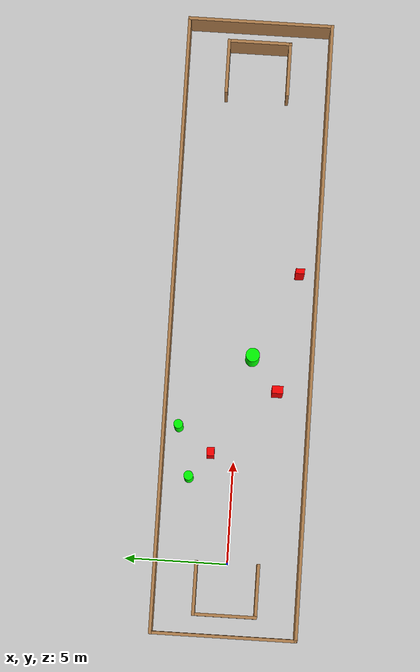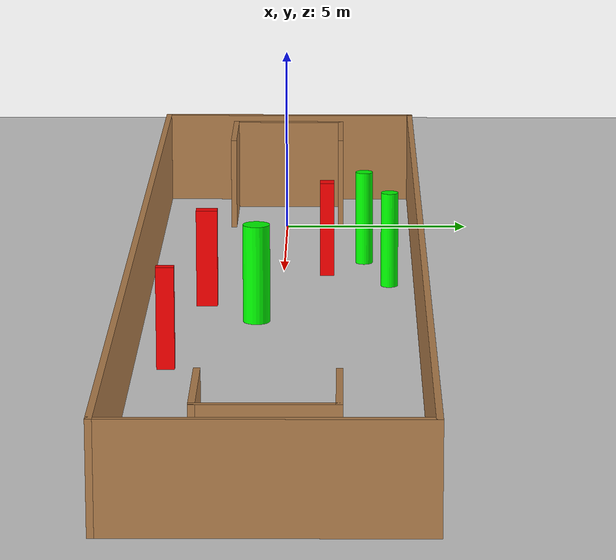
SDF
<sdf version="1.7">
 <world name="default">
  <light name="sun" type="directional">
   <pose>0 0 10 0 -0 0</pose>
   <diffuse>0.8 0.8 0.8 1</diffuse>
   <specular>0.2 0.2 0.2 1</specular>
   <attenuation>
    <range>1000</range>
    <constant>0.9</constant>
    <linear>0.01</linear>
    <quadratic>0.001</quadratic>
   </attenuation>
   <direction>-0.5 0.1 -0.9</direction>
   <spot><inner_angle>0</inner_angle><outer_angle>0</outer_angle><falloff>0</falloff></spot>
  </light>
  <model name="ground_plane">
   <static>1</static>
   <link name="link">
    <collision name="collision">
     <geometry><plane><normal>0 0 1</normal><size>100 100</size></plane></geometry>
     <surface>
      <contact><collide_bitmask>65535</collide_bitmask></contact>
      <friction><ode><mu>100</mu><mu2>50</mu2></ode></friction>
     </surface>
    </collision>
    <visual name="visual">
     <cast_shadows>0</cast_shadows>
     <geometry><plane><normal>0 0 1</normal><size>100 100</size></plane></geometry>
     <material>
      <script><uri>file://media/materials/scripts/gazebo.material</uri><name>Gazebo/Grey</name></script>
     </material>
    </visual>
   </link>
  </model>
  <gravity>0 0 -9.8</gravity>
  <magnetic_field>6e-06 2.3e-05 -4.2e-05</magnetic_field>
  <atmosphere type="adiabatic"/>
  <physics type="ode">
   <max_step_size>0.001</max_step_size>
   <real_time_factor>1</real_time_factor>
   <real_time_update_rate>1000</real_time_update_rate>
  </physics>
  <scene><ambient>0.4 0.4 0.4 1</ambient><background>0.7 0.7 0.7 1</background><shadows>1</shadows></scene>
  <spherical_coordinates>
   <surface_model>EARTH_WGS84</surface_model>
   <latitude_deg>0</latitude_deg>
   <longitude_deg>0</longitude_deg>
   <elevation>0</elevation>
   <heading_deg>0</heading_deg>
  </spherical_coordinates>
  <model name="my_base_walls">
   <link name="Wall_0">
    <collision name="Wall_0_Collision">
     <geometry><box><size>7.15 0.15 2.5</size></box></geometry>
     <pose>0 0 1.25 0 -0 0</pose>
    </collision>
    <visual name="Wall_0_Visual">
     <pose>0 0 1.25 0 -0 0</pose>
     <geometry><box><size>7.15 0.15 2.5</size></box></geometry>
     <material>
      <script><uri>file://media/materials/scripts/gazebo.material</uri><name>Gazebo/Wood</name></script>
      <ambient>1 1 1 1</ambient>
     </material>
     <meta><layer>0</layer></meta>
    </visual>
    <pose>-15 0 0 0 -0 1.5708</pose>
   </link>
   <link name="Wall_10">
    <collision name="Wall_10_Collision">
     <geometry><box><size>2.65 0.15 2.5</size></box></geometry>
     <pose>0 0 1.25 0 -0 0</pose>
    </collision>
    <visual name="Wall_10_Visual">
     <pose>0 0 1.25 0 -0 0</pose>
     <geometry><box><size>2.65 0.15 2.5</size></box></geometry>
     <material>
      <script><uri>file://media/materials/scripts/gazebo.material</uri><name>Gazebo/Wood</name></script>
      <ambient>1 1 1 1</ambient>
     </material>
     <meta><layer>0</layer></meta>
    </visual>
    <pose>-12.75 -1.5 0 0 -0 0</pose>
   </link>
   <link name="Wall_12">
    <collision name="Wall_12_Collision">
     <geometry><box><size>2.65 0.15 2.5</size></box></geometry>
     <pose>0 0 1.25 0 -0 0</pose>
    </collision>
    <visual name="Wall_12_Visual">
     <pose>0 0 1.25 0 -0 0</pose>
     <geometry><box><size>2.65 0.15 2.5</size></box></geometry>
     <material>
      <script><uri>file://media/materials/scripts/gazebo.material</uri><name>Gazebo/Wood</name></script>
      <ambient>1 1 1 1</ambient>
     </material>
     <meta><layer>0</layer></meta>
    </visual>
    <pose>-12.75 1.5 0 0 -0 0</pose>
   </link>
   <link name="Wall_14">
    <collision name="Wall_14_Collision">
     <geometry><box><size>3.15 0.15 2.5</size></box></geometry>
     <pose>0 0 1.25 0 -0 0</pose>
    </collision>
    <visual name="Wall_14_Visual">
     <pose>0 0 1.25 0 -0 0</pose>
     <geometry><box><size>3.15 0.15 2.5</size></box></geometry>
     <material>
      <script><uri>file://media/materials/scripts/gazebo.material</uri><name>Gazebo/Wood</name></script>
      <ambient>1 1 1 1</ambient>
     </material>
     <meta><layer>0</layer></meta>
    </visual>
    <pose>14 0 0 0 -0 -1.5708</pose>
   </link>
   <link name="Wall_15">
    <collision name="Wall_15_Collision">
     <geometry><box><size>2.65 0.15 2.5</size></box></geometry>
     <pose>0 0 1.25 0 -0 0</pose>
    </collision>
    <visual name="Wall_15_Visual">
     <pose>0 0 1.25 0 -0 0</pose>
     <geometry><box><size>2.65 0.15 2.5</size></box></geometry>
     <material>
      <script><uri>file://media/materials/scripts/gazebo.material</uri><name>Gazebo/Wood</name></script>
      <ambient>1 1 1 1</ambient>
     </material>
     <meta><layer>0</layer></meta>
    </visual>
    <pose>12.75 -1.5 0 0 -0 3.14159</pose>
   </link>
   <link name="Wall_17">
    <collision name="Wall_17_Collision">
     <geometry><box><size>2.65 0.15 2.5</size></box></geometry>
     <pose>0 0 1.25 0 -0 0</pose>
    </collision>
    <visual name="Wall_17_Visual">
     <pose>0 0 1.25 0 -0 0</pose>
     <geometry><box><size>2.65 0.15 2.5</size></box></geometry>
     <material>
      <script><uri>file://media/materials/scripts/gazebo.material</uri><name>Gazebo/Wood</name></script>
      <ambient>1 1 1 1</ambient>
     </material>
     <meta><layer>0</layer></meta>
    </visual>
    <pose>12.75 1.5 0 0 -0 3.14159</pose>
   </link>
   <link name="Wall_2">
    <collision name="Wall_2_Collision">
     <geometry><box><size>30.15 0.15 2.5</size></box></geometry>
     <pose>0 0 1.25 0 -0 0</pose>
    </collision>
    <visual name="Wall_2_Visual">
     <pose>0 0 1.25 0 -0 0</pose>
     <geometry><box><size>30.15 0.15 2.5</size></box></geometry>
     <material>
      <script><uri>file://media/materials/scripts/gazebo.material</uri><name>Gazebo/Wood</name></script>
      <ambient>1 1 1 1</ambient>
     </material>
     <meta><layer>0</layer></meta>
    </visual>
    <pose>-0 -3.5 0 0 -0 0</pose>
   </link>
   <link name="Wall_4">
    <collision name="Wall_4_Collision">
     <geometry><box><size>30.15 0.15 2.5</size></box></geometry>
     <pose>0 0 1.25 0 -0 0</pose>
    </collision>
    <visual name="Wall_4_Visual">
     <pose>0 0 1.25 0 -0 0</pose>
     <geometry><box><size>30.15 0.15 2.5</size></box></geometry>
     <material>
      <script><uri>file://media/materials/scripts/gazebo.material</uri><name>Gazebo/Wood</name></script>
      <ambient>1 1 1 1</ambient>
     </material>
     <meta><layer>0</layer></meta>
    </visual>
    <pose>-0 3.5 0 0 -0 0</pose>
   </link>
   <link name="Wall_6">
    <collision name="Wall_6_Collision">
     <geometry><box><size>7.15 0.15 2.5</size></box></geometry>
     <pose>0 0 1.25 0 -0 0</pose>
    </collision>
    <visual name="Wall_6_Visual">
     <pose>0 0 1.25 0 -0 0</pose>
     <geometry><box><size>7.15 0.15 2.5</size></box></geometry>
     <material>
      <script><uri>file://media/materials/scripts/gazebo.material</uri><name>Gazebo/Wood</name></script>
      <ambient>1 1 1 1</ambient>
     </material>
     <meta><layer>0</layer></meta>
    </visual>
    <pose>15 0 0 0 -0 -1.5708</pose>
   </link>
   <link name="Wall_9">
    <collision name="Wall_9_Collision">
     <geometry><box><size>3.15 0.15 2.5</size></box></geometry>
     <pose>0 0 1.25 0 -0 0</pose>
    </collision>
    <visual name="Wall_9_Visual">
     <pose>0 0 1.25 0 -0 0</pose>
     <geometry><box><size>3.15 0.15 2.5</size></box></geometry>
     <material>
      <script><uri>file://media/materials/scripts/gazebo.material</uri><name>Gazebo/Wood</name></script>
      <ambient>1 1 1 1</ambient>
     </material>
     <meta><layer>0</layer></meta>
    </visual>
    <pose>-14 0 0 0 -0 -1.5708</pose>
   </link>
   <static>1</static>
   <pose>11.5 0 0 0 -0 0</pose>
  </model>
  <model name="cylinder1">
   <static>1</static>
   <link name="link">
    <inertial>
     <mass>1</mass>
     <inertia><ixx>0.5</ixx><ixy>0</ixy><ixz>0</ixz><iyy>0.5</iyy><iyz>0</iyz><izz>1</izz></inertia>
    </inertial>
    <collision name="collision">
     <geometry><cylinder><radius>0.3400992791960069</radius><length>2.5</length></cylinder></geometry>
    </collision>
    <visual name="visual">
     <geometry><cylinder><radius>0.3400992791960069</radius><length>2.5</length></cylinder></geometry>
     <material>
      <ambient>0 1 0 1</ambient>
      <diffuse>0 1 0 1</diffuse>
      <specular>0.1 0.1 0.1 1</specular>
      <emissive>0 0 0 0</emissive>
     </material>
    </visual>
   </link>
   <pose>10.113568161109681 -0.5994402663780924 1.25 0 0 0</pose>
  </model>
  <model name="cylinder2">
   <static>1</static>
   <link name="link">
    <inertial>
     <mass>1</mass>
     <inertia><ixx>0.5</ixx><ixy>0</ixy><ixz>0</ixz><iyy>0.5</iyy><iyz>0</iyz><izz>1</izz></inertia>
    </inertial>
    <collision name="collision">
     <geometry><cylinder><radius>0.22319321403054249</radius><length>2.5</length></cylinder></geometry>
    </collision>
    <visual name="visual">
     <geometry><cylinder><radius>0.22319321403054249</radius><length>2.5</length></cylinder></geometry>
     <material>
      <ambient>0 1 0 1</ambient>
      <diffuse>0 1 0 1</diffuse>
      <specular>0.1 0.1 0.1 1</specular>
      <emissive>0 0 0 0</emissive>
     </material>
    </visual>
   </link>
   <pose>6.555525643357443 2.781917075632408 1.25 0 0 0</pose>
  </model>
  <model name="cylinder3">
   <static>1</static>
   <link name="link">
    <inertial>
     <mass>1</mass>
     <inertia><ixx>0.5</ixx><ixy>0</ixy><ixz>0</ixz><iyy>0.5</iyy><iyz>0</iyz><izz>1</izz></inertia>
    </inertial>
    <collision name="collision">
     <geometry><cylinder><radius>0.22924904156602158</radius><length>2.5</length></cylinder></geometry>
    </collision>
    <visual name="visual">
     <geometry><cylinder><radius>0.22924904156602158</radius><length>2.5</length></cylinder></geometry>
     <material>
      <ambient>0 1 0 1</ambient>
      <diffuse>0 1 0 1</diffuse>
      <specular>0.1 0.1 0.1 1</specular>
      <emissive>0 0 0 0</emissive>
     </material>
    </visual>
   </link>
   <pose>4.104852219994173 2.139001363018177 1.25 0 0 0</pose>
  </model>
  <model name="box1">
   <static>1</static>
   <link name="link">
    <inertial>
     <mass>1</mass>
     <inertia><ixx>0.083</ixx><ixy>0</ixy><ixz>0</ixz><iyy>0.083</iyy><iyz>0</iyz><izz>0.083</izz></inertia>
    </inertial>
    <collision name="collision">
     <geometry><box><size>0.40447206939933 0.3638605331412902 2.5</size></box></geometry>
    </collision>
    <visual name="visual">
     <geometry><box><size>0.40447206939933 0.3638605331412902 2.5</size></box></geometry>
     <material>
      <ambient>1 0 0 1</ambient>
      <diffuse>1 0 0 1</diffuse>
      <specular>0.1 0.1 0.1 1</specular>
      <emissive>0 0 0 0</emissive>
     </material>
    </visual>
    <sensor name="my_contact" type="contact">
     <contact><collision>box_collision</collision><topic>__default_topic__</topic></contact>
    </sensor>
   </link>
   <pose>5.325783118519725 1.1472079980135774 1.25 0 0 0</pose>
  </model>
  <model name="box2">
   <static>1</static>
   <link name="link">
    <inertial>
     <mass>1</mass>
     <inertia><ixx>0.083</ixx><ixy>0</ixy><ixz>0</ixz><iyy>0.083</iyy><iyz>0</iyz><izz>0.083</izz></inertia>
    </inertial>
    <collision name="collision">
     <geometry><box><size>0.3718775346192055 0.5363448860349016 2.5</size></box></geometry>
    </collision>
    <visual name="visual">
     <geometry><box><size>0.3718775346192055 0.5363448860349016 2.5</size></box></geometry>
     <material>
      <ambient>1 0 0 1</ambient>
      <diffuse>1 0 0 1</diffuse>
      <specular>0.1 0.1 0.1 1</specular>
      <emissive>0 0 0 0</emissive>
     </material>
    </visual>
    <sensor name="my_contact" type="contact">
     <contact><collision>box_collision</collision><topic>__default_topic__</topic></contact>
    </sensor>
   </link>
   <pose>8.507487324106854 -1.9032887111096501 1.25 0 0 0</pose>
  </model>
  <model name="box3">
   <static>1</static>
   <link name="link">
    <inertial>
     <mass>1</mass>
     <inertia><ixx>0.083</ixx><ixy>0</ixy><ixz>0</ixz><iyy>0.083</iyy><iyz>0</iyz><izz>0.083</izz></inertia>
    </inertial>
    <collision name="collision">
     <geometry><box><size>0.24156485854997067 0.4368198875973302 2.5</size></box></geometry>
    </collision>
    <visual name="visual">
     <geometry><box><size>0.24156485854997067 0.4368198875973302 2.5</size></box></geometry>
     <material>
      <ambient>1 0 0 1</ambient>
      <diffuse>1 0 0 1</diffuse>
      <specular>0.1 0.1 0.1 1</specular>
      <emissive>0 0 0 0</emissive>
     </material>
    </visual>
    <sensor name="my_contact" type="contact">
     <contact><collision>box_collision</collision><topic>__default_topic__</topic></contact>
    </sensor>
   </link>
   <pose>14.339921823653148 -2.650680985578415 1.25 0 0 0</pose>
  </model>
 </world>
</sdf>
